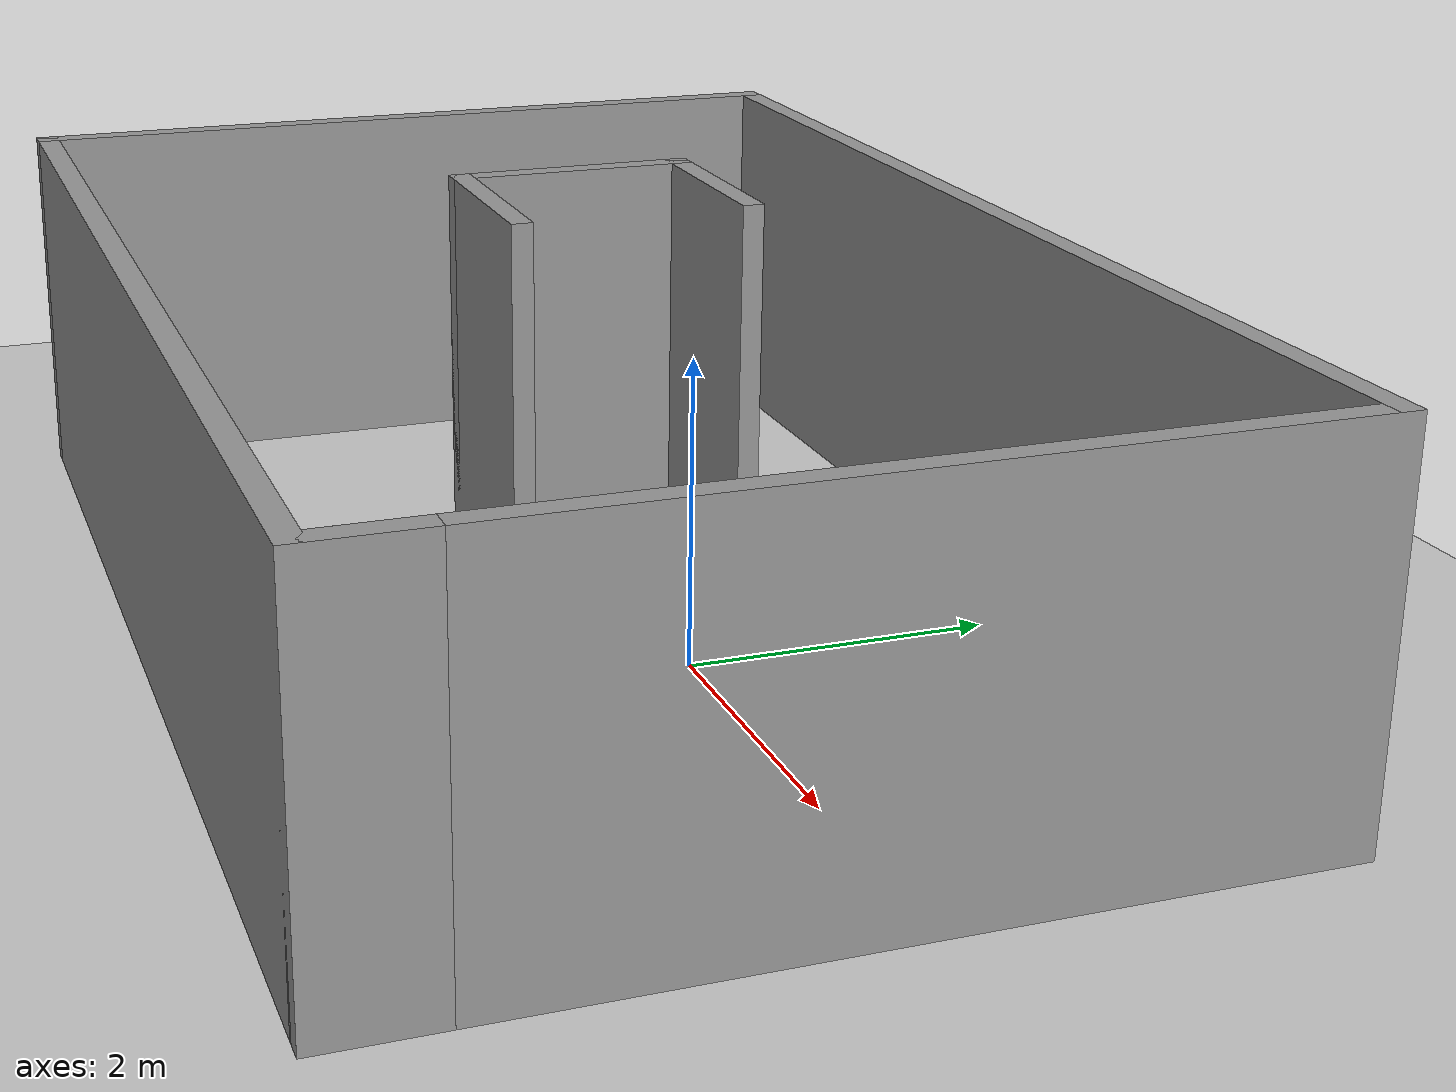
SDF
<sdf version="1.7">
 <world name="default">
  <light name="sun" type="directional">
   <pose>0 0 10 0 -0 0</pose>
   <diffuse>0.8 0.8 0.8 1</diffuse>
   <specular>0.2 0.2 0.2 1</specular>
   <attenuation>
    <range>1000</range>
    <constant>0.9</constant>
    <linear>0.01</linear>
    <quadratic>0.001</quadratic>
   </attenuation>
   <direction>-0.5 0.1 -0.9</direction>
   <spot><inner_angle>0</inner_angle><outer_angle>0</outer_angle><falloff>0</falloff></spot>
  </light>
  <model name="ground_plane">
   <static>1</static>
   <link name="link">
    <collision name="collision">
     <geometry><plane><normal>0 0 1</normal><size>100 100</size></plane></geometry>
     <surface>
      <contact><collide_bitmask>65535</collide_bitmask></contact>
      <friction><ode><mu>100</mu><mu2>50</mu2></ode></friction>
     </surface>
    </collision>
    <visual name="visual">
     <cast_shadows>0</cast_shadows>
     <geometry><plane><normal>0 0 1</normal><size>100 100</size></plane></geometry>
     <material>
      <script><uri>file://media/materials/scripts/gazebo.material</uri><name>Gazebo/Grey</name></script>
     </material>
    </visual>
   </link>
  </model>
  <gravity>0 0 -9.8</gravity>
  <magnetic_field>6e-06 2.3e-05 -4.2e-05</magnetic_field>
  <atmosphere type="adiabatic"/>
  <physics type="ode">
   <max_step_size>0.001</max_step_size>
   <real_time_factor>1</real_time_factor>
   <real_time_update_rate>1000</real_time_update_rate>
  </physics>
  <scene><ambient>0.4 0.4 0.4 1</ambient><background>0.7 0.7 0.7 1</background><shadows>1</shadows></scene>
  <spherical_coordinates>
   <surface_model>EARTH_WGS84</surface_model>
   <latitude_deg>0</latitude_deg>
   <longitude_deg>0</longitude_deg>
   <elevation>0</elevation>
   <heading_deg>0</heading_deg>
  </spherical_coordinates>
  <model name="obstacles_c">
   <pose>-0.899929 -0.351408 0 0 -0 0</pose>
   <link name="Wall_12">
    <collision name="Wall_12_Collision">
     <geometry><box><size>1.5 0.15 2.5</size></box></geometry>
     <pose>0 0 1.25 0 -0 0</pose>
    </collision>
    <visual name="Wall_12_Visual">
     <pose>0 0 1.25 0 -0 0</pose>
     <geometry><box><size>1.5 0.15 2.5</size></box></geometry>
     <material>
      <script><uri>file://media/materials/scripts/gazebo.material</uri><name>Gazebo/Grey</name></script>
      <ambient>1 1 1 1</ambient>
     </material>
     <meta><layer>0</layer></meta>
    </visual>
    <pose>-1.43635 1.37225 0 0 -0 3.14159</pose>
   </link>
   <link name="Wall_13">
    <collision name="Wall_13_Collision">
     <geometry><box><size>1.75 0.15 2.5</size></box></geometry>
     <pose>0 0 1.25 0 -0 0</pose>
    </collision>
    <visual name="Wall_13_Visual">
     <pose>0 0 1.25 0 -0 0</pose>
     <geometry><box><size>1.75 0.15 2.5</size></box></geometry>
     <material>
      <script><uri>file://media/materials/scripts/gazebo.material</uri><name>Gazebo/Grey</name></script>
      <ambient>1 1 1 1</ambient>
     </material>
     <meta><layer>0</layer></meta>
    </visual>
    <pose>-2.11135 0.572246 0 0 -0 -1.5708</pose>
   </link>
   <link name="Wall_14">
    <collision name="Wall_14_Collision">
     <geometry><box><size>1.5 0.15 2.5</size></box></geometry>
     <pose>0 0 1.25 0 -0 0</pose>
    </collision>
    <visual name="Wall_14_Visual">
     <pose>0 0 1.25 0 -0 0</pose>
     <geometry><box><size>1.5 0.15 2.5</size></box></geometry>
     <material>
      <script><uri>file://media/materials/scripts/gazebo.material</uri><name>Gazebo/Grey</name></script>
      <ambient>1 1 1 1</ambient>
     </material>
     <meta><layer>0</layer></meta>
    </visual>
    <pose>-1.43635 -0.227754 0 0 -0 0</pose>
   </link>
   <link name="Wall_2">
    <collision name="Wall_2_Collision">
     <geometry><box><size>5.75 0.15 2.5</size></box></geometry>
     <pose>0 0 1.25 0 -0 0</pose>
    </collision>
    <visual name="Wall_2_Visual">
     <pose>0 0 1.25 0 -0 0</pose>
     <geometry><box><size>5.75 0.15 2.5</size></box></geometry>
     <material>
      <script><uri>file://media/materials/scripts/gazebo.material</uri><name>Gazebo/Grey</name></script>
      <ambient>1 1 1 1</ambient>
     </material>
     <meta><layer>0</layer></meta>
    </visual>
    <pose>-4.3 -0 0 0 -0 1.5708</pose>
   </link>
   <link name="Wall_3">
    <collision name="Wall_3_Collision">
     <geometry><box><size>8.75 0.15 2.5</size></box></geometry>
     <pose>0 0 1.25 0 -0 0</pose>
    </collision>
    <visual name="Wall_3_Visual">
     <pose>0 0 1.25 0 -0 0</pose>
     <geometry><box><size>8.75 0.15 2.5</size></box></geometry>
     <material>
      <script><uri>file://media/materials/scripts/gazebo.material</uri><name>Gazebo/Grey</name></script>
      <ambient>1 1 1 1</ambient>
     </material>
     <meta><layer>0</layer></meta>
    </visual>
    <pose>-0 2.8 0 0 -0 0</pose>
   </link>
   <link name="Wall_4">
    <collision name="Wall_4_Collision">
     <geometry><box><size>5.5 0.15 2.5</size></box></geometry>
     <pose>0 0 1.25 0 -0 0</pose>
    </collision>
    <visual name="Wall_4_Visual">
     <pose>0 0 1.25 0 -0 0</pose>
     <geometry><box><size>5.5 0.15 2.5</size></box></geometry>
     <material>
      <script><uri>file://media/materials/scripts/gazebo.material</uri><name>Gazebo/Grey</name></script>
      <ambient>1 1 1 1</ambient>
     </material>
     <meta><layer>0</layer></meta>
    </visual>
    <pose>4.3 0.125 0 0 -0 -1.5708</pose>
   </link>
   <link name="Wall_5">
    <collision name="Wall_5_Collision">
     <geometry><box><size>0.15 0.15 2.5</size></box></geometry>
     <pose>0 0 1.25 0 -0 0</pose>
    </collision>
    <visual name="Wall_5_Visual">
     <pose>0 0 1.25 0 -0 0</pose>
     <geometry><box><size>0.15 0.15 2.5</size></box></geometry>
     <material>
      <script><uri>file://media/materials/scripts/gazebo.material</uri><name>Gazebo/Grey</name></script>
      <ambient>1 1 1 1</ambient>
     </material>
     <meta><layer>0</layer></meta>
    </visual>
    <pose>4.3 -2.55 0 0 -0 0</pose>
   </link>
   <link name="Wall_8">
    <collision name="Wall_8_Collision">
     <geometry><box><size>8.75 0.15 2.5</size></box></geometry>
     <pose>0 0 1.25 0 -0 0</pose>
    </collision>
    <visual name="Wall_8_Visual">
     <pose>0 0 1.25 0 -0 0</pose>
     <geometry><box><size>8.75 0.15 2.5</size></box></geometry>
     <material>
      <script><uri>file://media/materials/scripts/gazebo.material</uri><name>Gazebo/Grey</name></script>
      <ambient>1 1 1 1</ambient>
     </material>
     <meta><layer>0</layer></meta>
    </visual>
    <pose>-0 -2.8 0 0 -0 0</pose>
   </link>
   <link name="Wall_9">
    <collision name="Wall_9_Collision">
     <geometry><box><size>0.75 0.15 2.5</size></box></geometry>
     <pose>0 0 1.25 0 -0 0</pose>
    </collision>
    <visual name="Wall_9_Visual">
     <pose>0 0 1.25 0 -0 0</pose>
     <geometry><box><size>0.75 0.15 2.5</size></box></geometry>
     <material>
      <script><uri>file://media/materials/scripts/gazebo.material</uri><name>Gazebo/Grey</name></script>
      <ambient>1 1 1 1</ambient>
     </material>
     <meta><layer>0</layer></meta>
    </visual>
    <pose>4.3 -2.5 0 0 -0 1.5708</pose>
   </link>
   <static>1</static>
  </model>
 </world>
</sdf>
